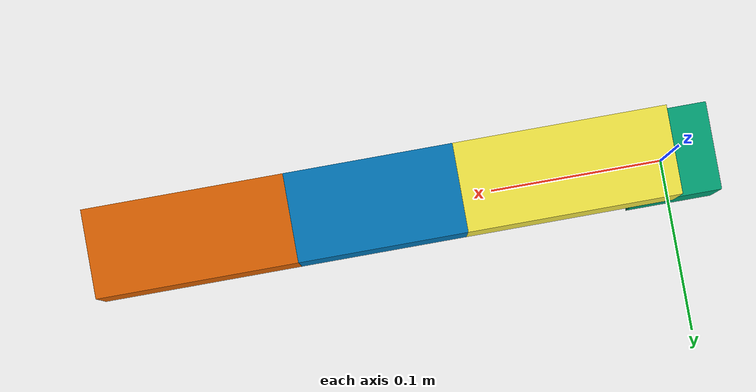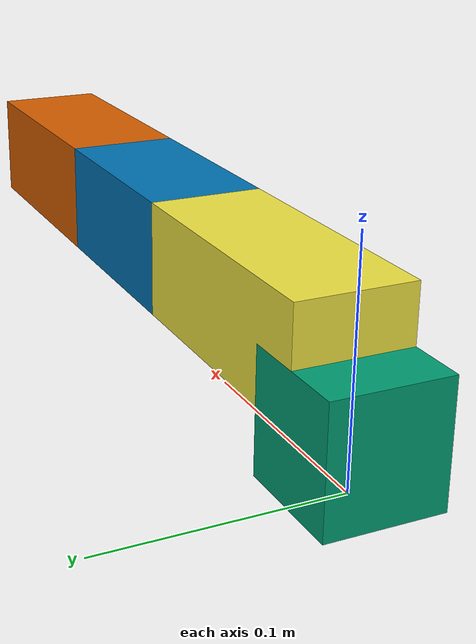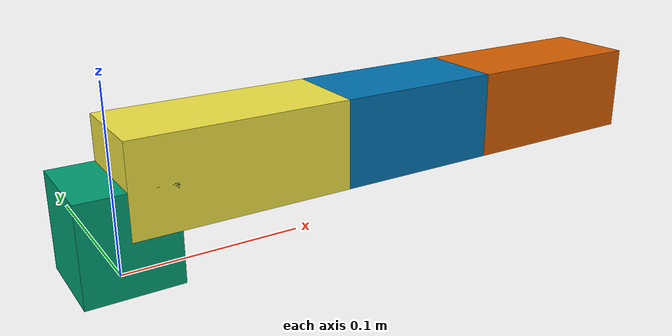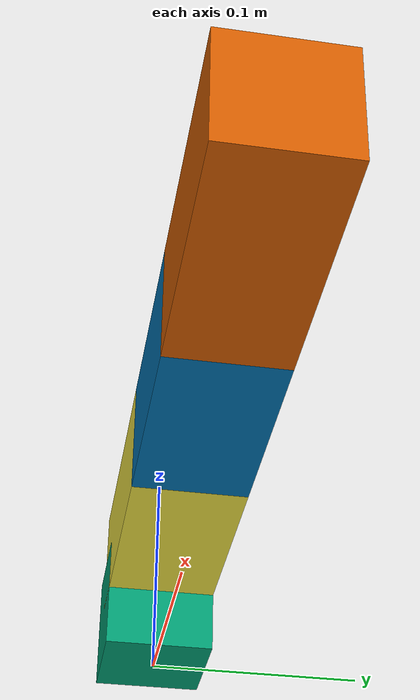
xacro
<?xml version="1.0"?>
<!-- Robot -->
<robot xmlns:xacro="http://www.ros.org/wiki/xacro" name="ur5">
  <!-- PROPERTIES -->
  <xacro:property name="L1" value="0.053"/>
  <xacro:property name="L2" value="0.12"/>
  <xacro:property name="L3" value="0.095"/>
  <xacro:property name="L4" value="0.113"/>
  <xacro:property name="linkThickness" value="0.05"/>

  <!-- JOINTS -->
  <joint name="world_joint" type="fixed">
    <parent link="world"/>
    <child link="base_link"/>
    <origin rpy="0.0 0.0 0.0" xyz="0.0 0.0 0.0"/>
  </joint>
  <joint name="joint_1" type="continuous">
    <parent link="base_link"/>
    <child link="link_1"/>
    <origin rpy="0.0 0.0 0.0" xyz="0.0 0.0 0.0"/>
    <axis xyz="0 0 1"/>
  </joint>
  <joint name="joint_2" type="continuous">
    <parent link="link_1"/>
    <child link="link_2"/>
    <origin rpy="0.0 0.0 0.0" xyz="0.0 0.0 ${L1}"/>
    <axis xyz="0 1 0"/>
  </joint>
  <joint name="joint_3" type="continuous">
    <parent link="link_2"/>
    <child link="link_3"/>
    <origin rpy="0.0 0.0 0.0" xyz="${L2} 0.0 0.0"/>
    <axis xyz="0 1 0"/>
  </joint>
  <joint name="joint_4" type="continuous">
    <parent link="link_3"/>
    <child link="link_4"/>
    <origin rpy="0.0 0.0 0.0" xyz="${L3} 0.0 0.0"/>
    <axis xyz="0 1 0"/>
  </joint>
  <joint name="joint_ee" type="continuous">
    <parent link="link_4"/>
    <child link="link_ee"/>
    <origin rpy="0.0 0.0 0.0" xyz="${L4} 0.0 0.0"/>
    <axis xyz="0 0 1"/>
  </joint>

  <!-- LINKS -->
  <link name="world"/>
  <link name="base_link"/>
  <link name="link_1">
    <visual>
      <geometry>
        <box size="${linkThickness} ${linkThickness} ${L1}"/>
      </geometry>
      <origin rpy="0.0 0.0 0.0" xyz="0.0 0.0 ${L1/2}"/>
    </visual>
  </link>
  <link name="link_2">
    <visual>
      <geometry>
        <box size="${L2} ${linkThickness} ${linkThickness}"/>
      </geometry>
      <origin rpy="0.0 0.0 0.0" xyz="${L2/2} 0.0 0.0"/>
    </visual>
  </link>
  <link name="link_3">
    <visual>
      <geometry>
        <box size="${L3} ${linkThickness} ${linkThickness}"/>
      </geometry>
      <origin rpy="0.0 0.0 0.0" xyz="${L3/2} 0.0 0.0"/>
    </visual>
  </link>
  <link name="link_4">
    <visual>
      <geometry>
        <box size="${L4} ${linkThickness} ${linkThickness}"/>
      </geometry>
      <origin rpy="0.0 0.0 0.0" xyz="${L4/2} 0.0 0.0"/>
    </visual>
  </link>
  <link name="link_ee"/>

</robot>
